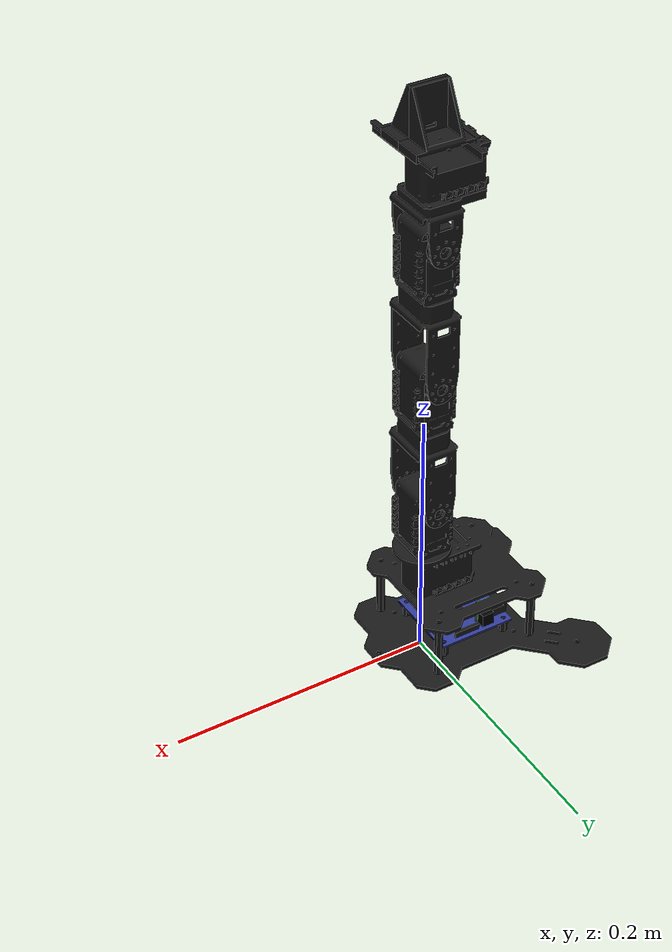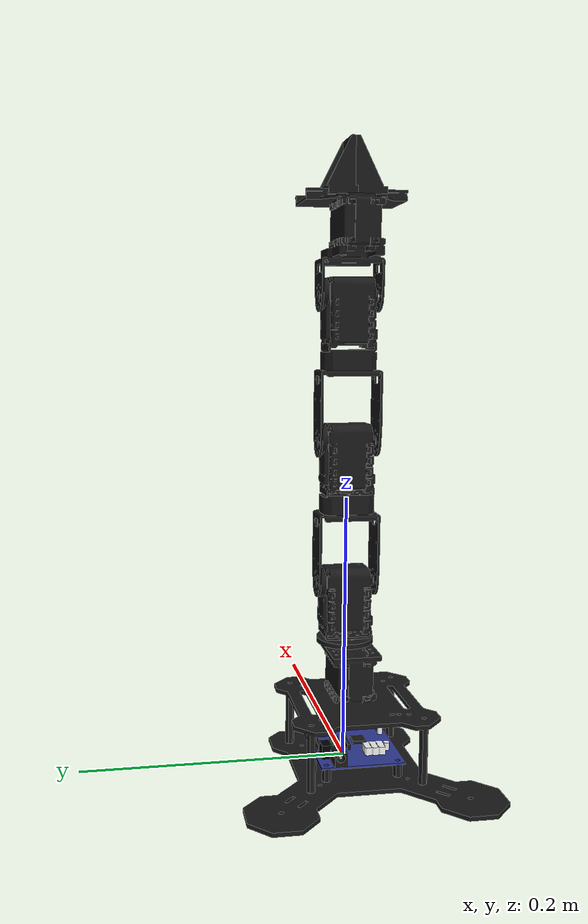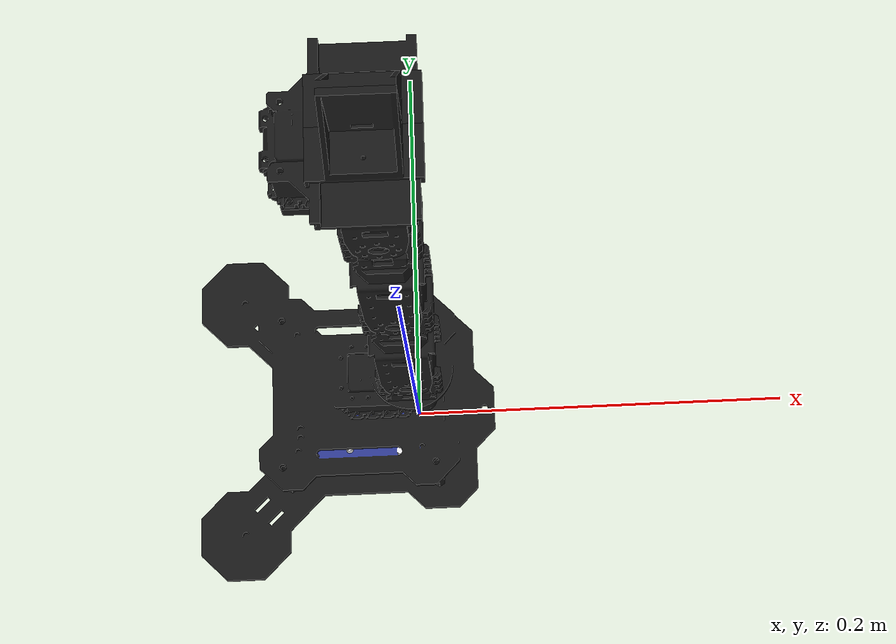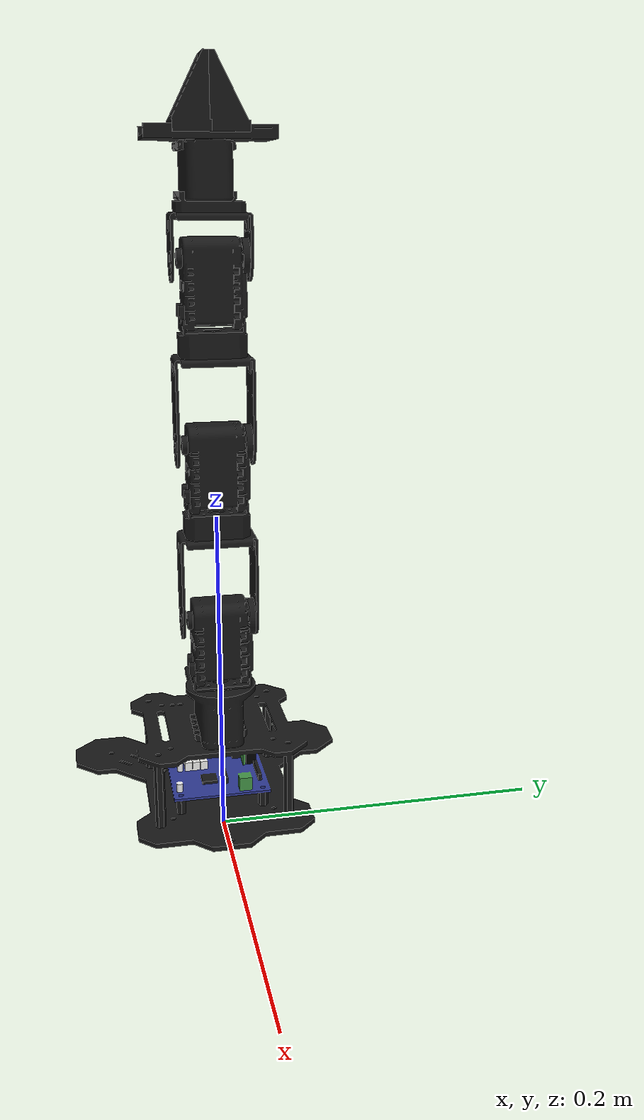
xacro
<?xml version="1.0"?>
<robot name="Phantom_X" xmlns:xacro="http://www.ros.org/wiki/xacro">

	<!-- Includes -->
	<xacro:include filename="$(find phantomx_description)/xacro/macros.xacro" />
	<xacro:include filename="$(find phantomx_description)/xacro/robot_parameters.xacro" />

	<!-- Properties -->
	<xacro:property name="M_PI" value="3.1415926535897931" />
	<xacro:property name="M_PI_M" value="1.570796332679" />

	<!-- World -->
	<link name="${link_08_name}" />

	<!-- Base -->
	<xacro:m_link name="${link_00_name}" o_rpy="0 0 0" o_xyz="0 0 0" geo_mesh="${geom_00_name}" mass="0.352" in_xyz="-0.027277 -0.000052 0.042715" ixx="0.662213" iyy="0.758616" izz="0.717514" ixy="0.000438" ixz="-0.133928" iyz="-0.000837" co_xyz="0 0 0" co_rpy="0 0 0" col_mesh="${colli_00_name}" />
	<xacro:m_joint name="${joint_00_name}" type="fixed" origin_rpy="0 0 0" origin_xyz="0 0 0" parent="${link_08_name}" child="${link_00_name}" limit_e="0.0" limit_l="0.0" limit_u="0.0" limit_v="0.0" mimic="" mimic_joint=""/>

	<!-- Shoulder c-->
	<xacro:m_link name="${link_01_name}" o_rpy="0 0 ${M_PI_M}" o_xyz="0 0 0" geo_mesh="${geom_01_name}" mass="0.118" in_xyz="0.001031 -0.000032 -0.013806" ixx="0.030893" iyy="0.036432" izz="0.018984" ixy="0.000002" ixz="-0.000383" iyz="-0.000026" co_xyz="0 0 0" co_rpy="0 0 ${M_PI_M}" col_mesh="${colli_01_name}" />
	<xacro:m_joint name="${joint_01_name}" type="revolute" origin_rpy="0 0 0" origin_xyz="0 0 0.137" parent="${link_00_name}" child="${link_01_name}" limit_e="1000.0" limit_l="-2.617993" limit_u="2.617993" limit_v="0.5" mimic="" mimic_joint=""/>

	<!-- Lower arm -->
	<xacro:m_link name="${link_02_name}" o_rpy="0 0 0" o_xyz="0 0 0" geo_mesh="${geom_02_name}" mass="0.162" in_xyz="0.080988 -0.000023 -0.000748" ixx="0.031204" iyy="0.124182" izz="0.111578" ixy="0.00002" ixz="0.001864" iyz="-0.000003" co_xyz="0 0 0" co_rpy="0 0 0" col_mesh="${colli_02_name}" />
	<xacro:m_joint name="${joint_02_name}" type="revolute" origin_rpy="${M_PI_M} -${M_PI_M} 0" origin_xyz="0 0 0" parent="${link_01_name}" child="${link_02_name}" limit_e="1000.0" limit_l="-2.617993" limit_u="2.617993" limit_v="0.5" mimic="" mimic_joint=""/>

	<!-- Upper arm -->
	<xacro:m_link name="${link_03_name}" o_rpy="0 0 0" o_xyz="0 0 0" geo_mesh="${geom_03_name}" mass="0.162" in_xyz="0.080988 -0.000023 -0.000748" ixx="0.031204" iyy="0.124182" izz="0.111578" ixy="0.00002" ixz="0.001864" iyz="-0.000003" co_xyz="0 0 0" co_rpy="0 0 0" col_mesh="${colli_03_name}" />
	<xacro:m_joint name="${joint_03_name}" type="revolute" origin_rpy="0 0 0" origin_xyz="0.105 0 0" parent="${link_02_name}" child="${link_03_name}" limit_e="1000.0" limit_l="-2.617993" limit_u="2.617993" limit_v="0.5" mimic="" mimic_joint=""/>

	<!-- wrist arm -->
	<xacro:m_link name="${link_04_name}" o_rpy="0 0 0" o_xyz="0 0 0" geo_mesh="${geom_04_name}" mass="0.160" in_xyz="0.047054 0.009939 -0.000023" ixx="0.053897" iyy="0.057629" izz="0.068868" ixy="-0.002353" ixz="0.000011" iyz="0.000041" co_xyz="0 0 0" co_rpy="0 0 0" col_mesh="${colli_04_name}" />
	<xacro:m_joint name="${joint_04_name}" type="revolute" origin_rpy="0 0 0" origin_xyz="0.105 0 0" parent="${link_03_name}" child="${link_04_name}" limit_e="1000.0" limit_l="-2.617993" limit_u="2.617993" limit_v="0.5" mimic="" mimic_joint=""/>

	<!-- Finger_1 -->
	<xacro:m_link name="${link_05_name}" o_rpy="0 0 0" o_xyz="0 0 0" geo_mesh="${geom_05_name}" mass="0.018" in_xyz="0.010769 0 -0.007406" ixx="0.002959" iyy="0.00287" izz="0.004524" ixy="0" ixz="-0.000707" iyz="0" co_xyz="0 0 0" co_rpy="0 0 0" col_mesh="${colli_05_name}" />
	<xacro:m_joint name="${joint_05_name}" type="prismatic" origin_rpy="0 0 0" origin_xyz="0.071844 0 0" parent="${link_04_name}" child="${link_05_name}" limit_e="1000.0" limit_l="0" limit_u="0.015" limit_v="0.5" mimic="" mimic_joint=""/>

	<!-- Finger_2 -->
	<xacro:m_link name="${link_06_name}" o_rpy="0 0 0" o_xyz="0 0 0" geo_mesh="${geom_06_name}" mass="0.018" in_xyz="0.010769 0 -0.007406" ixx="0.002959" iyy="0.00287" izz="0.004524" ixy="0" ixz="-0.000707" iyz="0" co_xyz="0 0 0" co_rpy="0 0 0" col_mesh="${colli_06_name}" />
	<xacro:m_joint name="${joint_06_name}" type="prismatic" origin_rpy="${M_PI} 0 0" origin_xyz="0.071844 0 0" parent="${link_04_name}" child="${link_06_name}" limit_e="1000.0" limit_l="0" limit_u="0.015" limit_v="0.5" mimic="1" mimic_joint="${joint_05_name}"/>

	<!-- Tool -->
	<link name="tool_link">
        <inertial>
            <mass value="0.0001" />
            <origin xyz="0 0 0" />
            <inertia ixx="0.00001" iyy="0.00001" izz="0.00001" ixy="0.0" ixz="0.0" iyz="0.0" />
        </inertial>
    </link>
	<xacro:m_joint name="${joint_07_name}" type="fixed" origin_rpy="${M_PI} -${M_PI_M} 0" origin_xyz="0.110 0 0" parent="${link_04_name}" child="${link_07_name}" limit_e="0.0" limit_l="0" limit_u="0.0" limit_v="0.0" mimic="" mimic_joint=""/>

	<!-- Transmissions -->
	<xacro:m_trans trans_name="${trans_00_name}" j_name="${joint_01_name}" act_name="${actr_00_name}" />
	<xacro:m_trans trans_name="${trans_01_name}" j_name="${joint_02_name}" act_name="${actr_01_name}" />
	<xacro:m_trans trans_name="${trans_02_name}" j_name="${joint_03_name}" act_name="${actr_02_name}" />
	<xacro:m_trans trans_name="${trans_03_name}" j_name="${joint_04_name}" act_name="${actr_03_name}" />
	<xacro:m_trans trans_name="${trans_04_name}" j_name="${joint_05_name}" act_name="${actr_04_name}" />
	<xacro:m_trans trans_name="${trans_05_name}" j_name="${joint_06_name}" act_name="${actr_05_name}" />

	<!-- Gazebo Plugins -->
	<xacro:call_gazebo />
</robot>

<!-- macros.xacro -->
<robot xmlns:xacro="http://www.ros.org/wiki/xacro">

	<!-- Link Macro -->
	<xacro:macro name="m_link" params="name o_rpy o_xyz geo_mesh mass in_xyz ixx iyy izz ixy ixz iyz co_xyz co_rpy col_mesh ">
		<link name="${name}">
			<visual>
				<origin rpy="${o_rpy}" xyz="${o_xyz}" />
				<geometry>
					<mesh filename="${geo_mesh}" scale="1.0 1.0 1.0" />
				</geometry>
			</visual>
			<inertial>
				<mass value="${mass}" />
				<origin xyz="${in_xyz}" />
				<inertia ixx="${ixx}" iyy="${iyy}" izz="${izz}" ixy="${ixy}" ixz="${ixz}" iyz="${iyz}" />
			</inertial>
			<collision>
				<origin xyz="${co_xyz}" rpy="${co_rpy}" />
				<geometry>
					<mesh filename="${col_mesh}" scale="1.0 1.0 1.0" />
				</geometry>
			</collision>
		</link>
	</xacro:macro>

	<!-- Joint Macro -->
	<xacro:macro name="m_joint" params="name type origin_rpy origin_xyz parent child limit_e limit_l limit_u limit_v mimic mimic_joint">
		<joint name="${name}" type="${type}">
			<axis xyz="0 0 1" />
			<limit effort="${limit_e}" lower="${limit_l}" upper="${limit_u}" velocity="${limit_v}" />
			<origin rpy="${origin_rpy}" xyz="${origin_xyz}" />
			<parent link="${parent}" />
			<child link="${child}" />
			<xacro:if value="${mimic == 1}">
				<mimic joint="${mimic_joint}" multiplier="1" offset="0" />
			</xacro:if>
		</joint>
	</xacro:macro>

	<xacro:macro name="m_trans" params="trans_name j_name act_name">
		<transmission name="${trans_name}">
			<type>transmission_interface/SimpleTransmission</type>
			<joint name="${j_name}">
				<hardwareInterface>hardware_interface/EffortJointInterface</hardwareInterface>
			</joint>
			<actuator name="${act_name}">
				<hardwareInterface>hardware_interface/EffortJointInterface</hardwareInterface>
				<mechanicalReduction>1</mechanicalReduction>
			</actuator>
		</transmission>
	</xacro:macro>

	<!-- Gazebo plugins -->
	<xacro:macro name="call_gazebo" params="">
		<gazebo>
			<plugin name="gazebo_ros_control" filename="libgazebo_ros_control.so" />
		</gazebo>
		<gazebo>
			<plugin name="joint_state_publisher" filename="libgazebo_ros_joint_state_publisher.so">
				<jointName>shoulder_joint, lower_arm_joint, upper_arm_joint, wrist_joint, finger_1_joint, finger_2_joint</jointName>
				<updateRate>100.0</updateRate>
			</plugin>
		</gazebo>
		<gazebo>
			<plugin name="gazebo_grasp_fix" filename="libgazebo_grasp_fix.so">
				<arm>
					<arm_name>Phantom_X</arm_name>
					<palm_link> wrist_link </palm_link>
					<gripper_link> finger_1_link </gripper_link>
					<gripper_link> finger_2_link </gripper_link>
				</arm>
				<forces_angle_tolerance>100</forces_angle_tolerance>
				<update_rate>4</update_rate>
				<grip_count_threshold>4</grip_count_threshold>
				<max_grip_count>8</max_grip_count>
				<release_tolerance>0.001</release_tolerance>
				<disable_collisions_on_attach>false</disable_collisions_on_attach>
				<contact_topic>__default_topic__</contact_topic>
			</plugin>
		</gazebo>
	</xacro:macro>

</robot>

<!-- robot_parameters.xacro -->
<robot xmlns:xacro="http://www.ros.org/wiki/xacro">

	<!-- Link names -->
	<xacro:property name="link_00_name" value="base_link" />
	<xacro:property name="link_01_name" value="shoulder_link" />
	<xacro:property name="link_02_name" value="lower_arm_link" />
	<xacro:property name="link_03_name" value="upper_arm_link" />
	<xacro:property name="link_04_name" value="wrist_link" />
	<xacro:property name="link_05_name" value="finger_1_link" />
	<xacro:property name="link_06_name" value="finger_2_link" />
	<xacro:property name="link_07_name" value="tool_link" />
	<xacro:property name="link_08_name" value="world" />

	<!-- Joint names -->
	<xacro:property name="joint_00_name" value="base_joint" />
	<xacro:property name="joint_01_name" value="shoulder_joint" />
	<xacro:property name="joint_02_name" value="lower_arm_joint" />
	<xacro:property name="joint_03_name" value="upper_arm_joint" />
	<xacro:property name="joint_04_name" value="wrist_joint" />
	<xacro:property name="joint_05_name" value="finger_1_joint" />
	<xacro:property name="joint_06_name" value="finger_2_joint" />
	<xacro:property name="joint_07_name" value="tool_joint" />

	<!-- transmission names -->
	<xacro:property name="trans_00_name" value="trans_shoulder_joint" />
	<xacro:property name="trans_01_name" value="trans_lower_arm_joint" />
	<xacro:property name="trans_02_name" value="trans_upper_arm_joint" />
	<xacro:property name="trans_03_name" value="trans_wrist_joint" />
	<xacro:property name="trans_04_name" value="trans_finger_1_joint" />
	<xacro:property name="trans_05_name" value="trans_finger_2_joint" />

	<!-- actuator names -->
	<xacro:property name="actr_00_name" value="shoulder_joint_motor" />
	<xacro:property name="actr_01_name" value="lower_arm_joint_motor" />
	<xacro:property name="actr_02_name" value="upper_arm_joint_motor" />
	<xacro:property name="actr_03_name" value="wrist_joint_motor" />
	<xacro:property name="actr_04_name" value="finger_1_joint_motor" />
	<xacro:property name="actr_05_name" value="finger_2_joint_motor" />

	<!-- visual mesh files -->
	<xacro:property name="geom_00_name" value="package://phantomx_description/models/phantomx_pincher/meshes/visual/base.dae" />
	<xacro:property name="geom_01_name" value="package://phantomx_description/models/phantomx_pincher/meshes/visual/shoulder.dae" />
	<xacro:property name="geom_02_name" value="package://phantomx_description/models/phantomx_pincher/meshes/visual/lower_arm.dae" />
	<xacro:property name="geom_03_name" value="package://phantomx_description/models/phantomx_pincher/meshes/visual/lower_arm.dae" />
	<xacro:property name="geom_04_name" value="package://phantomx_description/models/phantomx_pincher/meshes/visual/gripper_body.dae" />
	<xacro:property name="geom_05_name" value="package://phantomx_description/models/phantomx_pincher/meshes/visual/finger.dae" />
	<xacro:property name="geom_06_name" value="package://phantomx_description/models/phantomx_pincher/meshes/visual/finger.dae" />

	<!-- collision mesh files -->
	<xacro:property name="colli_00_name" value="package://phantomx_description/models/phantomx_pincher/meshes/collision/simple_base.dae" />
	<xacro:property name="colli_01_name" value="package://phantomx_description/models/phantomx_pincher/meshes/collision/simple_shoulder.dae" />
	<xacro:property name="colli_02_name" value="package://phantomx_description/models/phantomx_pincher/meshes/collision/simple_bicep.dae" />
	<xacro:property name="colli_03_name" value="package://phantomx_description/models/phantomx_pincher/meshes/collision/simple_bicep.dae" />
	<xacro:property name="colli_04_name" value="package://phantomx_description/models/phantomx_pincher/meshes/collision/simple_wrist.dae" />
	<xacro:property name="colli_05_name" value="package://phantomx_description/models/phantomx_pincher/meshes/collision/simple_finger.dae" />
	<xacro:property name="colli_06_name" value="package://phantomx_description/models/phantomx_pincher/meshes/collision/simple_finger.dae" />
</robot>
